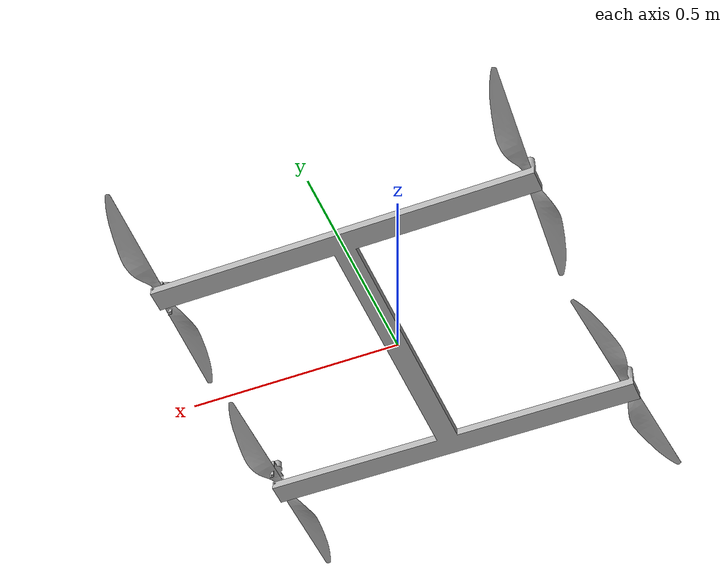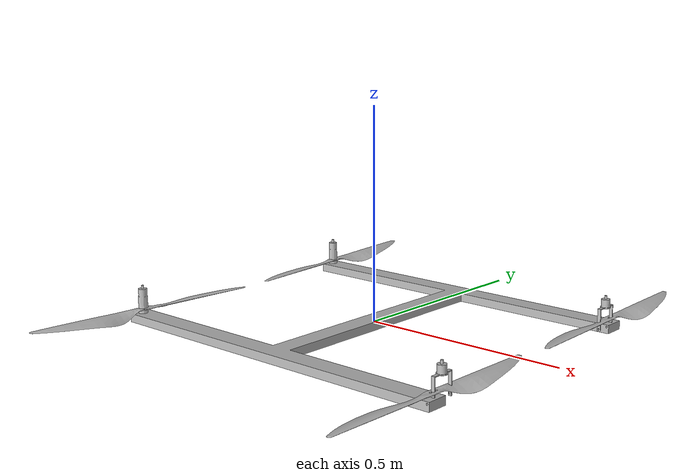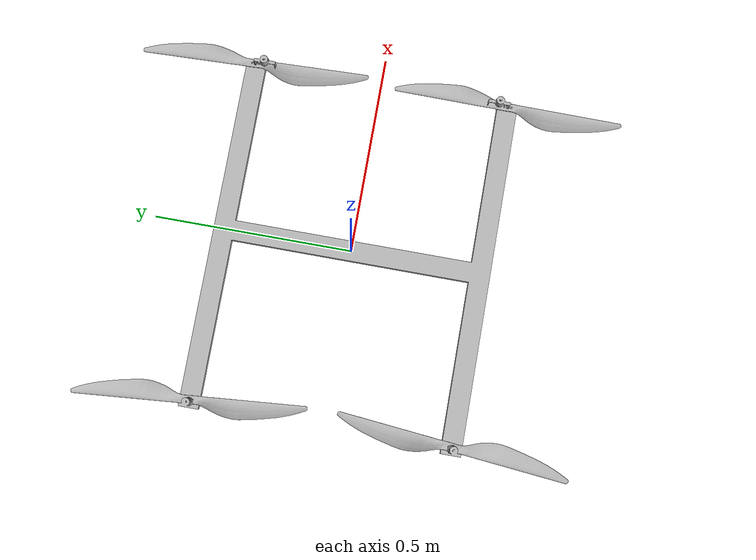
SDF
<sdf version='1.6'>
  <model name='h_frame_tilt'>
    <link name='base_link'>
      <pose frame=''>0 0 0 0 -0 0</pose>
      <inertial>
        <pose frame=''>-0.00958 0 4e-06 0 -0 0</pose>
        <mass>1.3164</mass>
        <inertia>
          <ixx>0.11389</ixx>
          <ixy>4.196e-18</ixy>
          <ixz>1.0583e-05</ixz>
          <iyy>0.062911</iyy>
          <iyz>-1.0152e-18</iyz>
          <izz>0.17671</izz>
        </inertia>
      </inertial>
      <collision name='base_link_collision'>
        <pose frame=''>0 0 0 0 -0 0</pose>
        <geometry>
          <mesh>
            <scale>1 1 1</scale>
            <uri>model://h_frame_tilt/meshes/base_link.STL</uri>
          </mesh>
        </geometry>
      </collision>
      <visual name='base_link_visual'>
        <pose frame=''>0 0 0 0 -0 0</pose>
        <geometry>
          <mesh>
            <scale>1 1 1</scale>
            <uri>model://h_frame_tilt/meshes/base_link.STL</uri>
          </mesh>
        </geometry>
      </visual>
    </link>
    <link name='h_frame_tilt/imu_link'>
      <inertial>
        <pose>0 0 0 0 0 0</pose>
        <mass>0.15</mass>
        <inertia>
          <ixx>0.00001</ixx>
          <ixy>0</ixy>
          <ixz>0</ixz>
          <iyy>0.00002</iyy>
          <iyz>0</iyz>
          <izz>0.00002</izz>
        </inertia>
      </inertial>
      <sensor name="imu_sensor" type="imu">
        <pose>0 0 0 3.141593 0 0</pose>
        <always_on>1</always_on>
        <update_rate>1000.0</update_rate>
      </sensor>
    </link>
    <joint name='h_frame_tilt/imu_joint' type='revolute'>
      <child>h_frame_tilt/imu_link</child>
      <parent>base_link</parent>
      <axis>
        <xyz>0 0 1</xyz>
        <limit>
          <lower>0</lower>
          <upper>0</upper>
          <effort>0</effort>
          <velocity>0</velocity>
        </limit>
        <dynamics>
          <damping>1.0</damping>
        </dynamics>
        <use_parent_model_frame>1</use_parent_model_frame>
      </axis>
      <physics>
        <ode>
          <implicit_spring_damper>1</implicit_spring_damper>
        </ode>
      </physics>
    </joint>
    <link name='motor_0'>
      <pose frame=''>0.43 -0.3 0.005 0 -0 0</pose>
      <inertial>
        <pose frame=''>-0 -0.025 0.004088 0 -0 0</pose>
        <mass>0.0010357</mass>
        <inertia>
          <ixx>8.5769e-08</ixx>
          <ixy>-3.0484e-15</ixy>
          <ixz>-2.6264e-14</ixz>
          <iyy>5.524e-08</iyy>
          <iyz>-9.7823e-14</iyz>
          <izz>7.6225e-08</izz>
        </inertia>
      </inertial>
      <collision name='motor_0_collision'>
        <pose frame=''>0 0 0 0 -0 0</pose>
        <geometry>
          <mesh>
            <scale>1 1 1</scale>
            <uri>model://h_frame_tilt/meshes/motor_0.STL</uri>
          </mesh>
        </geometry>
      </collision>
      <visual name='motor_0_visual'>
        <pose frame=''>0 0 0 0 -0 0</pose>
        <geometry>
          <mesh>
            <scale>1 1 1</scale>
            <uri>model://h_frame_tilt/meshes/motor_0.STL</uri>
          </mesh>
        </geometry>
      </visual>
    </link>
    <joint name='motor_0_joint' type='revolute'>
      <child>motor_0</child>
      <parent>base_link</parent>
      <axis>
        <xyz>0 1 0</xyz>
        <limit>
          <lower>-0.34907</lower>
          <upper>1.5708</upper>
          <effort>0</effort>
          <velocity>0</velocity>
        </limit>
        <dynamics>
          <spring_reference>0</spring_reference>
          <spring_stiffness>0</spring_stiffness>
        </dynamics>
        <use_parent_model_frame>1</use_parent_model_frame>
      </axis>
    </joint>
    <link name='rotor_0'>
      <pose frame=''>0.43 -0.325 0.026 0 -0 0</pose>
      <inertial>
        <pose frame=''>-0 0 -0.00744 0 -0 0</pose>
        <mass>0.067291</mass>
        <inertia>
          <ixx>0.0013208</ixx>
          <ixy>0.00040408</ixy>
          <ixz>5.2108e-13</ixz>
          <iyy>0.00013304</iyy>
          <iyz>-3.2452e-12</iyz>
          <izz>0.0014525</izz>
        </inertia>
      </inertial>
      <collision name='rotor_0_collision'>
        <pose frame=''>0 0 0 0 -0 0</pose>
        <geometry>
          <mesh>
            <scale>1 1 1</scale>
            <uri>model://h_frame_tilt/meshes/rotor_0.STL</uri>
          </mesh>
        </geometry>
      </collision>
      <visual name='rotor_0_visual'>
        <pose frame=''>0 0 0 0 -0 0</pose>
        <geometry>
          <mesh>
            <scale>1 1 1</scale>
            <uri>model://h_frame_tilt/meshes/rotor_0.STL</uri>
          </mesh>
        </geometry>
      </visual>
    </link>
    <joint name='rotor_0_joint' type='revolute'>
      <child>rotor_0</child>
      <parent>motor_0</parent>
      <axis>
        <xyz>0 0 1</xyz>
        <limit>
          <lower>-1e+16</lower>
          <upper>1e+16</upper>
        </limit>
        <dynamics>
          <spring_reference>0</spring_reference>
          <spring_stiffness>0</spring_stiffness>
        </dynamics>
        <use_parent_model_frame>1</use_parent_model_frame>
      </axis>
    </joint>
    <link name='motor_2'>
      <pose frame=''>0.43 0.3 0.005 0 -0 0</pose>
      <inertial>
        <pose frame=''>-0 0.025 0.004088 0 -0 0</pose>
        <mass>0.0010357</mass>
        <inertia>
          <ixx>8.5769e-08</ixx>
          <ixy>-3.0484e-15</ixy>
          <ixz>-2.6264e-14</ixz>
          <iyy>5.524e-08</iyy>
          <iyz>-9.7823e-14</iyz>
          <izz>7.6225e-08</izz>
        </inertia>
      </inertial>
      <collision name='motor_2_collision'>
        <pose frame=''>0 0 0 0 -0 0</pose>
        <geometry>
          <mesh>
            <scale>1 1 1</scale>
            <uri>model://h_frame_tilt/meshes/motor_2.STL</uri>
          </mesh>
        </geometry>
      </collision>
      <visual name='motor_2_visual'>
        <pose frame=''>0 0 0 0 -0 0</pose>
        <geometry>
          <mesh>
            <scale>1 1 1</scale>
            <uri>model://h_frame_tilt/meshes/motor_2.STL</uri>
          </mesh>
        </geometry>
      </visual>
    </link>
    <joint name='motor_2_joint' type='revolute'>
      <child>motor_2</child>
      <parent>base_link</parent>
      <axis>
        <xyz>0 1 0</xyz>
        <limit>
          <lower>-0.34907</lower>
          <upper>1.5708</upper>
          <effort>0</effort>
          <velocity>0</velocity>
        </limit>
        <dynamics>
          <spring_reference>0</spring_reference>
          <spring_stiffness>0</spring_stiffness>
        </dynamics>
        <use_parent_model_frame>1</use_parent_model_frame>
      </axis>
    </joint>
    <link name='rotor_2'>
      <pose frame=''>0.43 0.325 0.026 0 -0 0</pose>
      <inertial>
        <pose frame=''>0 -0 -0.00744 0 -0 0</pose>
        <mass>0.067291</mass>
        <inertia>
          <ixx>0.0013208</ixx>
          <ixy>0.00040408</ixy>
          <ixz>-1.8557e-12</ixz>
          <iyy>0.00013304</iyy>
          <iyz>1.3818e-12</iyz>
          <izz>0.0014525</izz>
        </inertia>
      </inertial>
      <collision name='rotor_2_collision'>
        <pose frame=''>0 0 0 0 -0 0</pose>
        <geometry>
          <mesh>
            <scale>1 1 1</scale>
            <uri>model://h_frame_tilt/meshes/rotor_2.STL</uri>
          </mesh>
        </geometry>
      </collision>
      <visual name='rotor_2_visual'>
        <pose frame=''>0 0 0 0 -0 0</pose>
        <geometry>
          <mesh>
            <scale>1 1 1</scale>
            <uri>model://h_frame_tilt/meshes/rotor_2.STL</uri>
          </mesh>
        </geometry>
      </visual>
    </link>
    <joint name='rotor_2_joint' type='revolute'>
      <child>rotor_2</child>
      <parent>motor_2</parent>
      <axis>
        <xyz>0 0 1</xyz>
        <limit>
          <lower>-1e+16</lower>
          <upper>1e+16</upper>
        </limit>
        <dynamics>
          <spring_reference>0</spring_reference>
          <spring_stiffness>0</spring_stiffness>
        </dynamics>
        <use_parent_model_frame>1</use_parent_model_frame>
      </axis>
    </joint>
    <link name='rotor_1'>
      <pose frame=''>-0.43 0.325 0.003413 0 -0 0</pose>
      <inertial>
        <pose frame=''>-0 -0 0.015147 0 -0 0</pose>
        <mass>0.067291</mass>
        <inertia>
          <ixx>0.0014422</ixx>
          <ixy>-6.5867e-05</ixy>
          <ixz>1.1889e-12</ixz>
          <iyy>1.1631e-05</iyy>
          <iyz>9.5717e-13</iyz>
          <izz>0.0014525</izz>
        </inertia>
      </inertial>
      <collision name='rotor_1_collision'>
        <pose frame=''>0 0 0 0 -0 0</pose>
        <geometry>
          <mesh>
            <scale>1 1 1</scale>
            <uri>model://h_frame_tilt/meshes/rotor_1.STL</uri>
          </mesh>
        </geometry>
      </collision>
      <visual name='rotor_1_visual'>
        <pose frame=''>0 0 0 0 -0 0</pose>
        <geometry>
          <mesh>
            <scale>1 1 1</scale>
            <uri>model://h_frame_tilt/meshes/rotor_1.STL</uri>
          </mesh>
        </geometry>
      </visual>
    </link>
    <joint name='rotor_1_joint' type='revolute'>
      <child>rotor_1</child>
      <parent>base_link</parent>
      <axis>
        <xyz>0 0 1</xyz>
        <limit>
          <lower>-1e+16</lower>
          <upper>1e+16</upper>
        </limit>
        <dynamics>
          <spring_reference>0</spring_reference>
          <spring_stiffness>0</spring_stiffness>
        </dynamics>
        <use_parent_model_frame>1</use_parent_model_frame>
      </axis>
    </joint>
    <link name='rotor_3'>
      <pose frame=''>-0.43 -0.325 0.003413 0 -0 0</pose>
      <inertial>
        <pose frame=''>0 -0 0.015147 0 -0 0</pose>
        <mass>0.067296</mass>
        <inertia>
          <ixx>0.001445</ixx>
          <ixy>2.396e-05</ixy>
          <ixz>-1.2171e-12</ixz>
          <iyy>9.0053e-06</iyy>
          <iyz>8.8947e-13</iyz>
          <izz>0.0014526</izz>
        </inertia>
      </inertial>
      <collision name='rotor_3_collision'>
        <pose frame=''>0 0 0 0 -0 0</pose>
        <geometry>
          <mesh>
            <scale>1 1 1</scale>
            <uri>model://h_frame_tilt/meshes/rotor_3.STL</uri>
          </mesh>
        </geometry>
      </collision>
      <visual name='rotor_3_visual'>
        <pose frame=''>0 0 0 0 -0 0</pose>
        <geometry>
          <mesh>
            <scale>1 1 1</scale>
            <uri>model://h_frame_tilt/meshes/rotor_3.STL</uri>
          </mesh>
        </geometry>
      </visual>
    </link>
    <joint name='rotor_3_joint' type='revolute'>
      <child>rotor_3</child>
      <parent>base_link</parent>
      <axis>
        <xyz>0 0 1</xyz>
        <limit>
          <lower>-1e+16</lower>
          <upper>1e+16</upper>
        </limit>
        <dynamics>
          <spring_reference>0</spring_reference>
          <spring_stiffness>0</spring_stiffness>
        </dynamics>
        <use_parent_model_frame>1</use_parent_model_frame>
      </axis>
    </joint>
    <plugin name="rotor_0_blade_1" filename="libLiftDragPlugin.so">
      <a0>0.3</a0>
      <alpha_stall>1.4</alpha_stall>
      <cla>4.2500</cla>
      <cda>0.10</cda>
      <cma>0.00</cma>
      <cla_stall>-0.025</cla_stall>
      <cda_stall>0.0</cda_stall>
      <cma_stall>0.0</cma_stall>
      <area>0.01</area>
      <air_density>1.2041</air_density>
      <cp>0  0.093 0</cp>
      <forward>-1 0 0</forward>
      <upward>0 0 1</upward>
      <link_name>rotor_0</link_name>
    </plugin>
    <plugin name="rotor_0_blade_2" filename="libLiftDragPlugin.so">
      <a0>0.3</a0>
      <alpha_stall>1.4</alpha_stall>
      <cla>4.2500</cla>
      <cda>0.10</cda>
      <cma>0.00</cma>
      <cla_stall>-0.025</cla_stall>
      <cda_stall>0.0</cda_stall>
      <cma_stall>0.0</cma_stall>
      <area>0.01</area>
      <air_density>1.2041</air_density>
       <cp>0 -0.093 0</cp>
      <forward>1 0 0</forward>
      <upward>0 0 1</upward>
      <link_name>rotor_0</link_name>
    </plugin>
 <plugin name="rotor_1_blade_1" filename="libLiftDragPlugin.so">
      <a0>0.3</a0>
      <alpha_stall>1.4</alpha_stall>
      <cla>4.2500</cla>
      <cda>0.10</cda>
      <cma>0.00</cma>
      <cla_stall>-0.025</cla_stall>
      <cda_stall>0.0</cda_stall>
      <cma_stall>0.0</cma_stall>
      <area>0.01</area>
      <air_density>1.2041</air_density>
       <cp>0 0.093 0</cp>
      <forward>-1 0 0</forward>
      <upward>0 0 1</upward>
      <link_name>rotor_1</link_name>
    </plugin>
    <plugin name="rotor_1_blade_2" filename="libLiftDragPlugin.so">
      <a0>0.3</a0>
      <alpha_stall>1.4</alpha_stall>
      <cla>4.2500</cla>
      <cda>0.10</cda>
      <cma>0.00</cma>
      <cla_stall>-0.025</cla_stall>
      <cda_stall>0.0</cda_stall>
      <cma_stall>0.0</cma_stall>
      <area>0.01</area>
      <air_density>1.2041</air_density>
      <cp>0  -0.093 0</cp>
      <forward>1 0 0</forward>
      <upward>0 0 1</upward>
      <link_name>rotor_1</link_name>
    </plugin>
<plugin name="rotor_2_blade_1" filename="libLiftDragPlugin.so">
      <a0>0.3</a0>
      <alpha_stall>1.4</alpha_stall>
      <cla>4.2500</cla>
      <cda>0.10</cda>
      <cma>0.00</cma>
      <cla_stall>-0.025</cla_stall>
      <cda_stall>0.0</cda_stall>
      <cma_stall>0.0</cma_stall>
      <area>0.01</area>
      <air_density>1.2041</air_density>
      <cp>0  0.093 0</cp>
      <forward>1 0 0</forward>
      <upward>0 0 1</upward>
      <link_name>rotor_2</link_name>
    </plugin>
    <plugin name="rotor_2_blade_2" filename="libLiftDragPlugin.so">
      <a0>0.3</a0>
      <alpha_stall>1.4</alpha_stall>
      <cla>4.2500</cla>
      <cda>0.10</cda>
      <cma>0.00</cma>
      <cla_stall>-0.025</cla_stall>
      <cda_stall>0.0</cda_stall>
      <cma_stall>0.0</cma_stall>
      <area>0.01</area>
      <air_density>1.2041</air_density>
       <cp>0 -0.093 0</cp>
      <forward>-1 0 0</forward>
      <upward>0 0 1</upward>
      <link_name>rotor_2</link_name>
    </plugin>
<plugin name="rotor_3_blade_1" filename="libLiftDragPlugin.so">
      <a0>0.3</a0>
      <alpha_stall>1.4</alpha_stall>
      <cla>4.2500</cla>
      <cda>0.10</cda>
      <cma>0.00</cma>
      <cla_stall>-0.025</cla_stall>
      <cda_stall>0.0</cda_stall>
      <cma_stall>0.0</cma_stall>
      <area>0.01</area>
      <air_density>1.2041</air_density>
      <cp>0  0.093 0</cp>
      <forward>1 0 0</forward>
      <upward>0 0 1</upward>
      <link_name>rotor_3</link_name>
    </plugin>
    <plugin name="rotor_3_blade_2" filename="libLiftDragPlugin.so">
      <a0>0.3</a0>
      <alpha_stall>1.4</alpha_stall>
      <cla>4.2500</cla>
      <cda>0.10</cda>
      <cma>0.00</cma>
      <cla_stall>-0.025</cla_stall>
      <cda_stall>0.0</cda_stall>
      <cma_stall>0.0</cma_stall>
      <area>0.01</area>
      <air_density>1.2041</air_density>
       <cp>0 -0.093 0</cp>
      <forward>-1 0 0</forward>
      <upward>0 0 1</upward>
      <link_name>rotor_3</link_name>
    </plugin>
 <plugin name="arducopter_plugin" filename="libArduPilotPlugin.so">
      <fdm_addr>127.0.0.1</fdm_addr>
      <fdm_port_in>9002</fdm_port_in>
      <fdm_port_out>9003</fdm_port_out>
      <!--
          Require by APM :
          Only change model and gazebo from XYZ to XY-Z coordinates
      -->
      <modelXYZToAirplaneXForwardZDown>0 0 0 3.141593 0 0</modelXYZToAirplaneXForwardZDown>
      <gazeboXYZToNED>0 0 0 3.141593 0 0</gazeboXYZToNED>
      <imuName>h_frame_tilt/imu_link::imu_sensor</imuName>
      <connectionTimeoutMaxCount>5</connectionTimeoutMaxCount>
      <control channel="0">
        <type>VELOCITY</type>
        <offset>0</offset>
        <p_gain>0.20</p_gain>
        <i_gain>0</i_gain>
        <d_gain>0</d_gain>
        <i_max>0</i_max>
        <i_min>0</i_min>
        <cmd_max>2.5</cmd_max>
        <cmd_min>-2.5</cmd_min>
        <jointName>rotor_0_joint</jointName>
        <multiplier>838</multiplier>
        <controlVelocitySlowdownSim>1</controlVelocitySlowdownSim>
      </control>
      <control channel="1">
        <type>VELOCITY</type>
        <offset>0</offset>
        <p_gain>0.20</p_gain>
        <i_gain>0</i_gain>
        <d_gain>0</d_gain>
        <i_max>0</i_max>
        <i_min>0</i_min>
        <cmd_max>2.5</cmd_max>
        <cmd_min>-2.5</cmd_min>
        <jointName>rotor_1_joint</jointName>
        <multiplier>838</multiplier>
        <controlVelocitySlowdownSim>1</controlVelocitySlowdownSim>
      </control>
      <control channel="2">
        <type>VELOCITY</type>
        <offset>0</offset>
        <p_gain>0.20</p_gain>
        <i_gain>0</i_gain>
        <d_gain>0</d_gain>
        <i_max>0</i_max>
        <i_min>0</i_min>
        <cmd_max>2.5</cmd_max>
        <cmd_min>-2.5</cmd_min>
        <jointName>rotor_2_joint</jointName>
        <multiplier>-838</multiplier>
        <controlVelocitySlowdownSim>1</controlVelocitySlowdownSim>
      </control>
      <control channel="3">
        <type>VELOCITY</type>
        <offset>0</offset>
        <p_gain>0.20</p_gain>
        <i_gain>0</i_gain>
        <d_gain>0</d_gain>
        <i_max>0</i_max>
        <i_min>0</i_min>
        <cmd_max>2.5</cmd_max>
        <cmd_min>-2.5</cmd_min>
        <jointName>rotor_3_joint</jointName>
        <multiplier>-838</multiplier>
        <controlVelocitySlowdownSim>1</controlVelocitySlowdownSim>
      </control>
    </plugin>
  </model>
</sdf>
